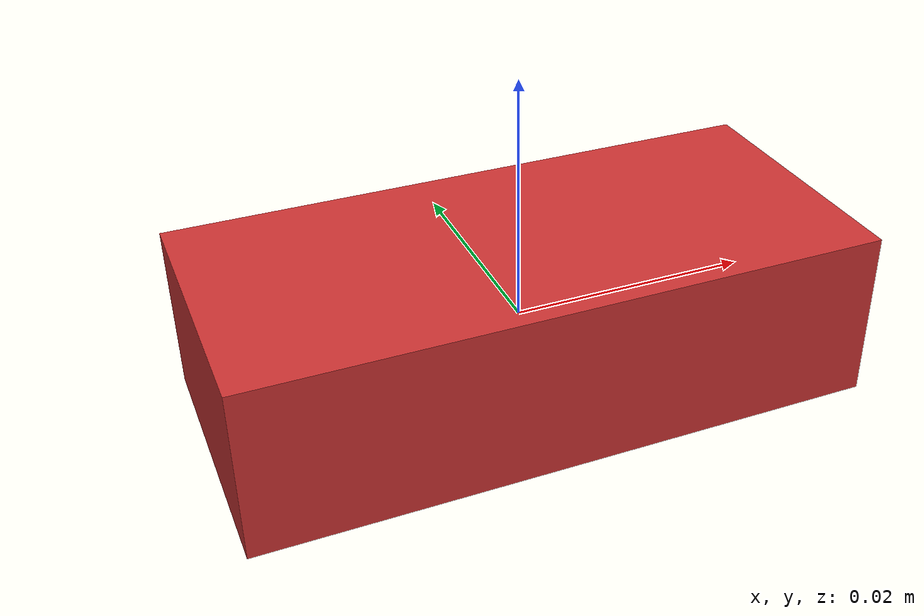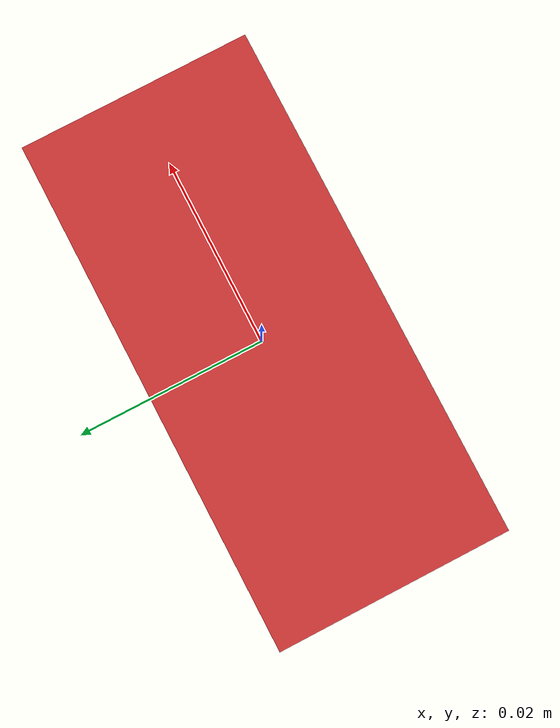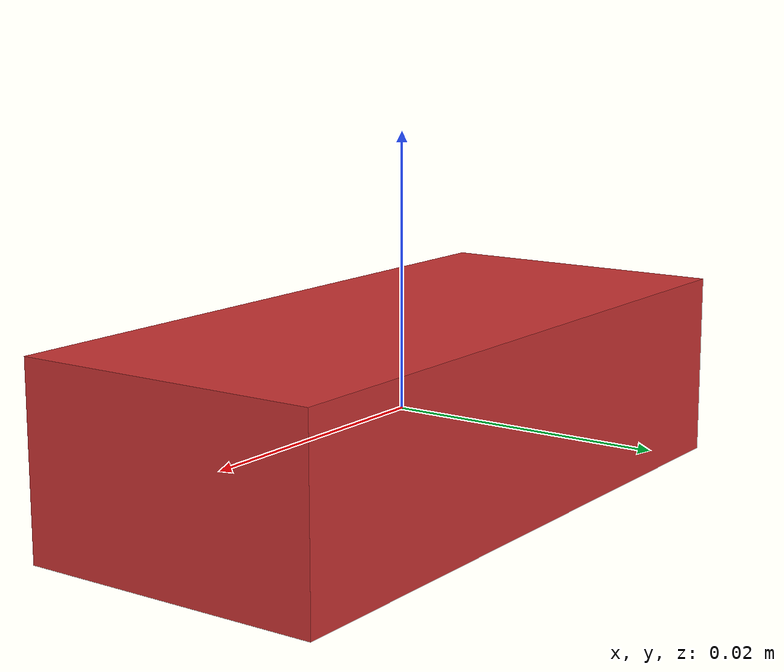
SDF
<?xml version="1.0"?>
<sdf version="1.9">
  <model name="brick">
    <static>false</static>

    <link name="brick_link">
      <inertial>
        <mass>0.0077</mass>
        <inertia>
          <ixx>4.65e-7</ixx>
          <iyy>1.80e-6</iyy>
          <izz>2.01e-6</izz>
          <ixy>0.0</ixy>
          <ixz>0.0</ixz>
          <iyz>0.0</iyz>
        </inertia>
      </inertial>

      <collision name="collision">
        <geometry>
          <box>
            <size>0.051 0.023 0.014</size>
          </box>
        </geometry>
        <surface>
          <friction>
            <ode>
              <mu>100.0</mu>
              <mu2>100.0</mu2>
              <slip1>0.0</slip1>
              <slip2>0.0</slip2>
            </ode>
          </friction>
          <contact>
            <ode>
              <kp>100000000.0</kp>
              <kd>10000.0</kd>
              <max_vel>0.0</max_vel>
              <min_depth>0.0001</min_depth>
            </ode>
          </contact>
        </surface>
      </collision>

      <visual name="visual">
        <geometry>
          <box>
            <size>0.051 0.023 0.014</size>
          </box>
        </geometry>
        <material>
          <ambient>0.8 0.2 0.2 1</ambient>
          <diffuse>0.8 0.2 0.2 1</diffuse>
        </material>
      </visual>
    </link>
  </model>
</sdf>
